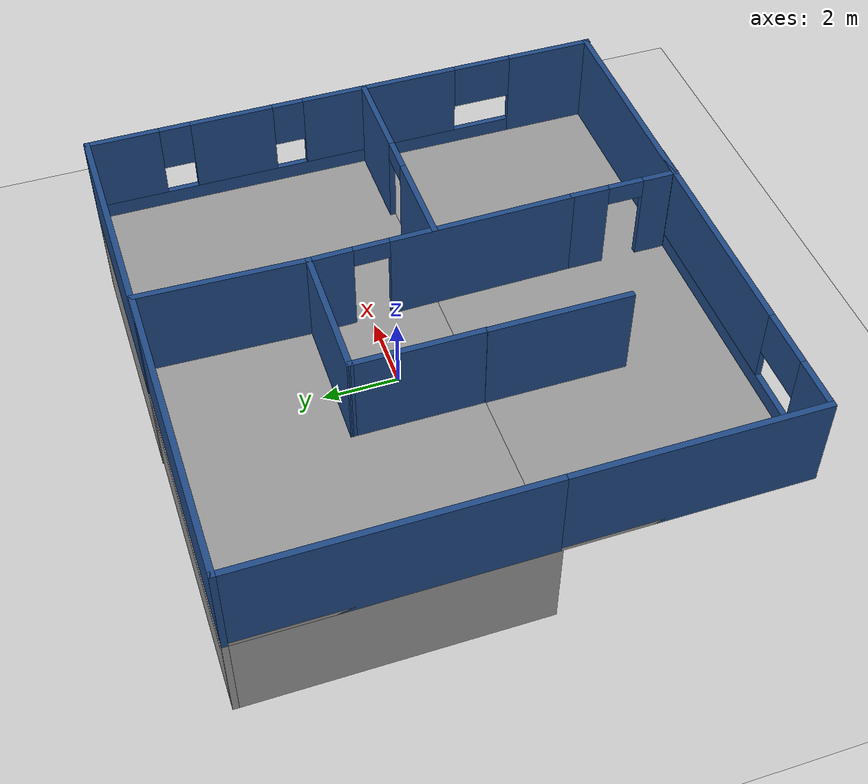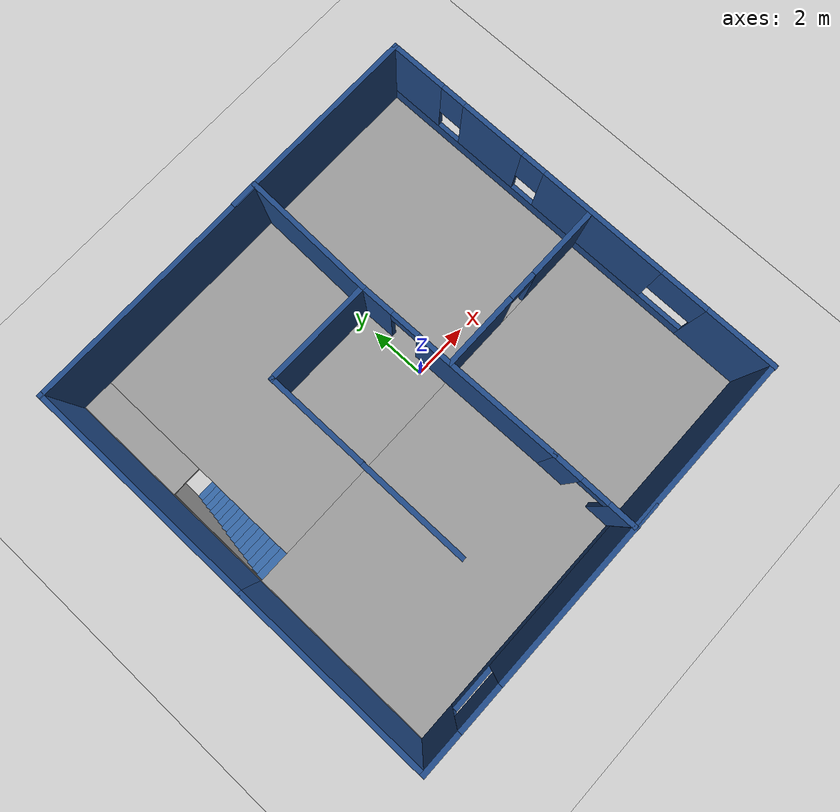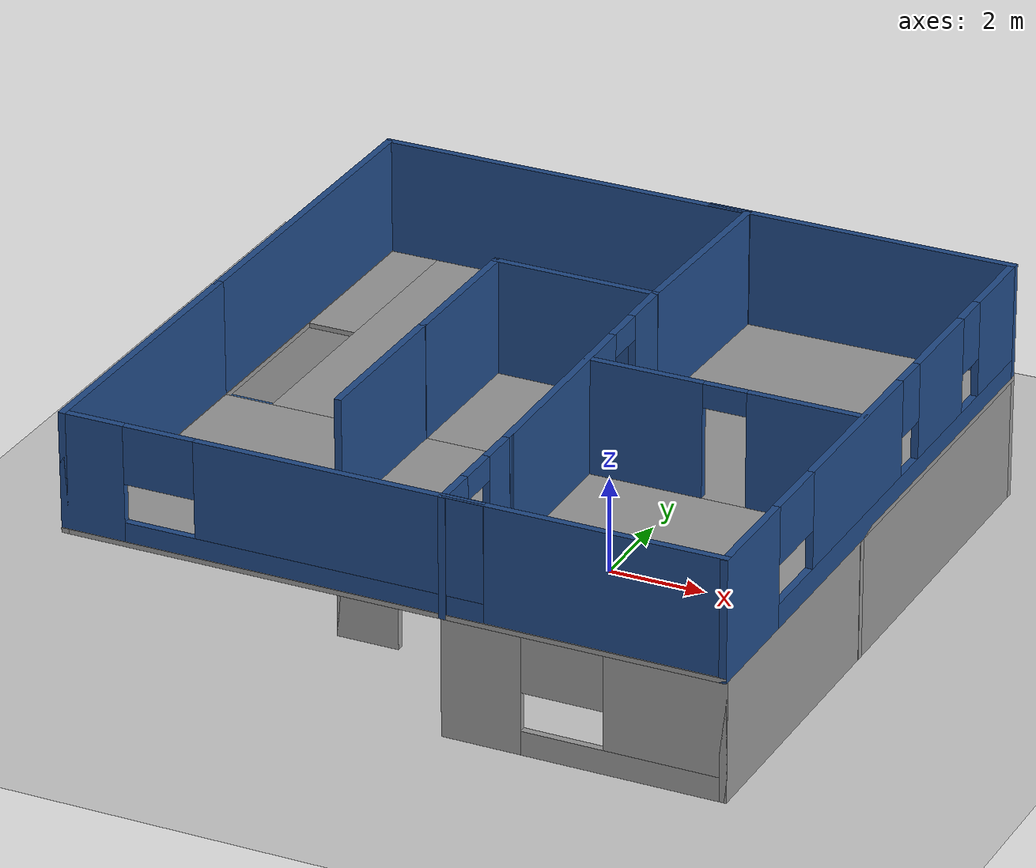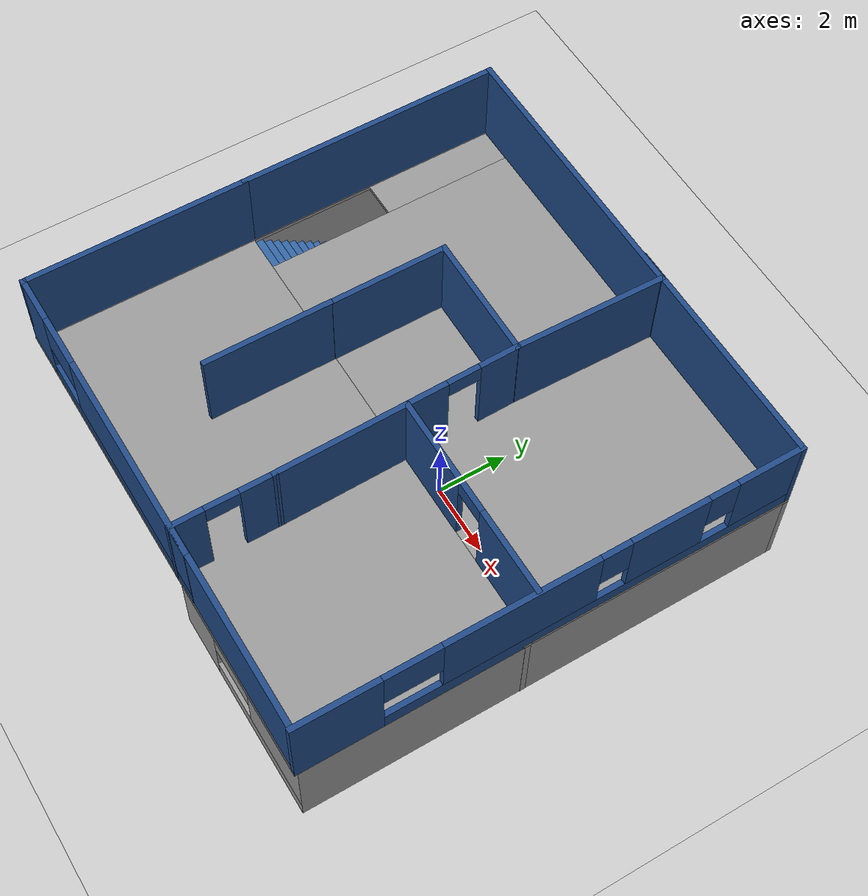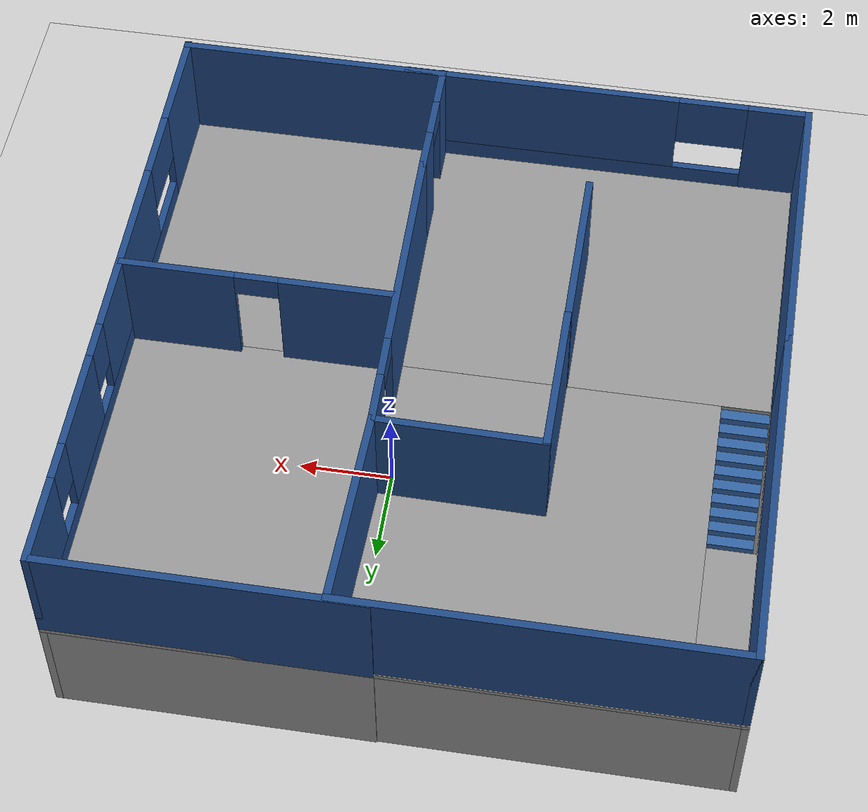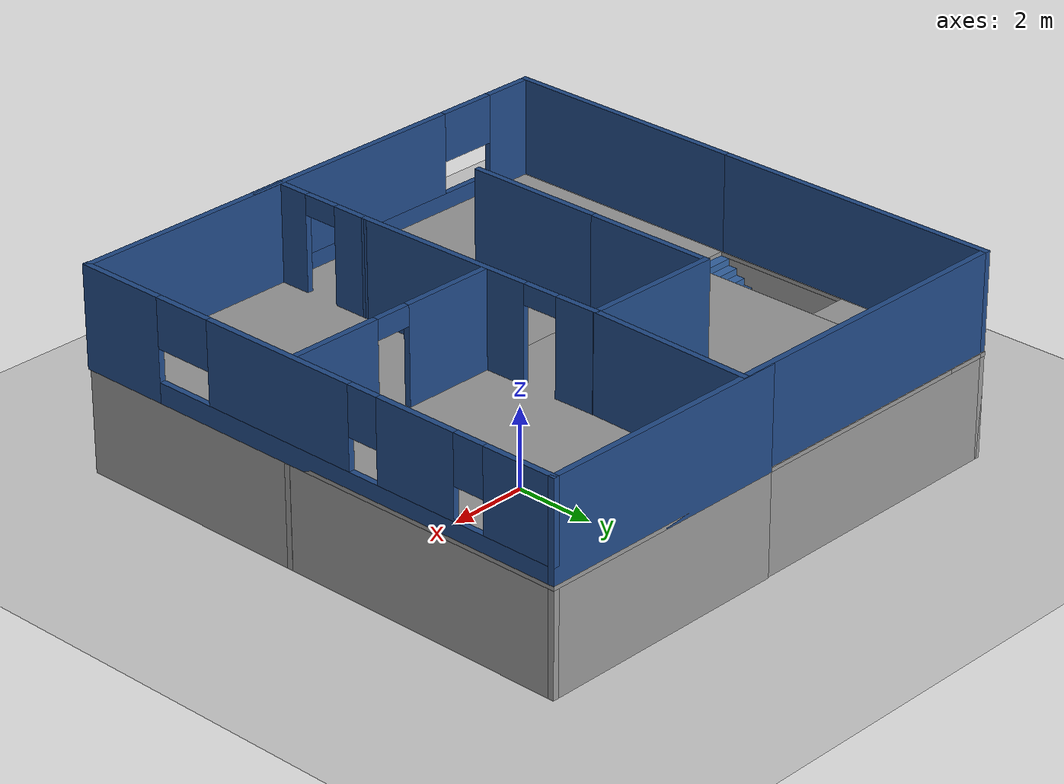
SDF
<?xml version="1.0" ?>
<sdf version="1.4">
  <world name="default">
    <include>
      <uri>model://ground_plane</uri>
    </include>
    <include>
      <uri>model://sun</uri>
    </include>
    <include>
      <uri>model://val2_house</uri>
      <name>val2_house</name>
    </include>
  </world>
</sdf>

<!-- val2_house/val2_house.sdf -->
<sdf version='1.6'>
  <model name='val2_house'>
    <pose frame=''>-1.07403 -0.487754 0 0 -0 0</pose>
    <link name='Floor_0'>
      <pose frame=''>-0.003502 -0 2.5 0 -0 0</pose>
      <visual name='Floor_0_Visual_0'>
        <pose frame=''>-6.71379 0 0.05 0 -0 0</pose>
        <geometry>
          <box>
            <size>0.16541 13.5809 0.1</size>
          </box>
        </geometry>
        <material>
          <script>
            <uri>file://media/materials/scripts/gazebo.material</uri>
            <name>Gazebo/Grey</name>
          </script>
          <ambient>0.827451 0.843137 0.811765 1</ambient>
        </material>
        <meta>
          <layer>1</layer>
        </meta>
      </visual>
      <collision name='Floor_0_Collision_0'>
        <geometry>
          <box>
            <size>0.16541 13.5809 0.1</size>
          </box>
        </geometry>
        <pose frame=''>-6.71379 0 0.05 0 -0 0</pose>
      </collision>
      <visual name='Floor_0_Visual_1'>
        <pose frame=''>0.082705 -3.67222 0.05 0 -0 0</pose>
        <geometry>
          <box>
            <size>13.4276 6.23647 0.1</size>
          </box>
        </geometry>
        <material>
          <script>
            <uri>file://media/materials/scripts/gazebo.material</uri>
            <name>Gazebo/Grey</name>
          </script>
          <ambient>0.827451 0.843137 0.811765 1</ambient>
        </material>
        <meta>
          <layer>1</layer>
        </meta>
      </visual>
      <collision name='Floor_0_Collision_1'>
        <geometry>
          <box>
            <size>13.4276 6.23647 0.1</size>
          </box>
        </geometry>
        <pose frame=''>0.082705 -3.67222 0.05 0 -0 0</pose>
      </collision>
      <visual name='Floor_0_Visual_2'>
        <pose frame=''>0.582705 3.11824 0.05 0 -0 0</pose>
        <geometry>
          <box>
            <size>12.4276 7.34444 0.1</size>
          </box>
        </geometry>
        <material>
          <script>
            <uri>file://media/materials/scripts/gazebo.material</uri>
            <name>Gazebo/Grey</name>
          </script>
          <ambient>0.827451 0.843137 0.811765 1</ambient>
        </material>
        <meta>
          <layer>1</layer>
        </meta>
      </visual>
      <collision name='Floor_0_Collision_2'>
        <geometry>
          <box>
            <size>12.4276 7.34444 0.1</size>
          </box>
        </geometry>
        <pose frame=''>0.582705 3.11824 0.05 0 -0 0</pose>
      </collision>
      <visual name='Floor_0_Visual_3'>
        <pose frame=''>-6.13109 4.86824 0.05 0 -0 0</pose>
        <geometry>
          <box>
            <size>1 3.84444 0.1</size>
          </box>
        </geometry>
        <material>
          <script>
            <uri>file://media/materials/scripts/gazebo.material</uri>
            <name>Gazebo/Grey</name>
          </script>
          <ambient>0.827451 0.843137 0.811765 1</ambient>
        </material>
        <meta>
          <layer>1</layer>
        </meta>
      </visual>
      <collision name='Floor_0_Collision_3'>
        <geometry>
          <box>
            <size>1 3.84444 0.1</size>
          </box>
        </geometry>
        <pose frame=''>-6.13109 4.86824 0.05 0 -0 0</pose>
      </collision>
    </link>
    <link name='Stairs_0'>
      <visual name='Stairs_0_Visual_0'>
        <pose frame=''>-6.13459 2.82935 0.083333 0 -0 0</pose>
        <geometry>
          <box>
            <size>1 0.233333 0.166667</size>
          </box>
        </geometry>
        <material>
          <script>
            <uri>file://media/materials/scripts/gazebo.material</uri>
            <name>Gazebo/Grey</name>
          </script>
          <ambient>0.203922 0.396078 0.643137 1</ambient>
        </material>
        <meta>
          <layer>0</layer>
        </meta>
      </visual>
      <collision name='Stairs_0_Collision_0'>
        <geometry>
          <box>
            <size>1 0.233333 0.166667</size>
          </box>
        </geometry>
        <pose frame=''>-6.13459 2.82935 0.083333 0 -0 0</pose>
      </collision>
      <visual name='Stairs_0_Visual_1'>
        <pose frame=''>-6.13459 2.59602 0.25 0 -0 0</pose>
        <geometry>
          <box>
            <size>1 0.233333 0.166667</size>
          </box>
        </geometry>
        <material>
          <script>
            <uri>file://media/materials/scripts/gazebo.material</uri>
            <name>Gazebo/Grey</name>
          </script>
          <ambient>0.203922 0.396078 0.643137 1</ambient>
        </material>
        <meta>
          <layer>0</layer>
        </meta>
      </visual>
      <collision name='Stairs_0_Collision_1'>
        <geometry>
          <box>
            <size>1 0.233333 0.166667</size>
          </box>
        </geometry>
        <pose frame=''>-6.13459 2.59602 0.25 0 -0 0</pose>
      </collision>
      <visual name='Stairs_0_Visual_2'>
        <pose frame=''>-6.13459 2.36268 0.416667 0 -0 0</pose>
        <geometry>
          <box>
            <size>1 0.233333 0.166667</size>
          </box>
        </geometry>
        <material>
          <script>
            <uri>file://media/materials/scripts/gazebo.material</uri>
            <name>Gazebo/Grey</name>
          </script>
          <ambient>0.203922 0.396078 0.643137 1</ambient>
        </material>
        <meta>
          <layer>0</layer>
        </meta>
      </visual>
      <collision name='Stairs_0_Collision_2'>
        <geometry>
          <box>
            <size>1 0.233333 0.166667</size>
          </box>
        </geometry>
        <pose frame=''>-6.13459 2.36268 0.416667 0 -0 0</pose>
      </collision>
      <visual name='Stairs_0_Visual_3'>
        <pose frame=''>-6.13459 2.12935 0.583333 0 -0 0</pose>
        <geometry>
          <box>
            <size>1 0.233333 0.166667</size>
          </box>
        </geometry>
        <material>
          <script>
            <uri>file://media/materials/scripts/gazebo.material</uri>
            <name>Gazebo/Grey</name>
          </script>
          <ambient>0.203922 0.396078 0.643137 1</ambient>
        </material>
        <meta>
          <layer>0</layer>
        </meta>
      </visual>
      <collision name='Stairs_0_Collision_3'>
        <geometry>
          <box>
            <size>1 0.233333 0.166667</size>
          </box>
        </geometry>
        <pose frame=''>-6.13459 2.12935 0.583333 0 -0 0</pose>
      </collision>
      <visual name='Stairs_0_Visual_4'>
        <pose frame=''>-6.13459 1.89602 0.75 0 -0 0</pose>
        <geometry>
          <box>
            <size>1 0.233333 0.166667</size>
          </box>
        </geometry>
        <material>
          <script>
            <uri>file://media/materials/scripts/gazebo.material</uri>
            <name>Gazebo/Grey</name>
          </script>
          <ambient>0.203922 0.396078 0.643137 1</ambient>
        </material>
        <meta>
          <layer>0</layer>
        </meta>
      </visual>
      <collision name='Stairs_0_Collision_4'>
        <geometry>
          <box>
            <size>1 0.233333 0.166667</size>
          </box>
        </geometry>
        <pose frame=''>-6.13459 1.89602 0.75 0 -0 0</pose>
      </collision>
      <visual name='Stairs_0_Visual_5'>
        <pose frame=''>-6.13459 1.66268 0.916667 0 -0 0</pose>
        <geometry>
          <box>
            <size>1 0.233333 0.166667</size>
          </box>
        </geometry>
        <material>
          <script>
            <uri>file://media/materials/scripts/gazebo.material</uri>
            <name>Gazebo/Grey</name>
          </script>
          <ambient>0.203922 0.396078 0.643137 1</ambient>
        </material>
        <meta>
          <layer>0</layer>
        </meta>
      </visual>
      <collision name='Stairs_0_Collision_5'>
        <geometry>
          <box>
            <size>1 0.233333 0.166667</size>
          </box>
        </geometry>
        <pose frame=''>-6.13459 1.66268 0.916667 0 -0 0</pose>
      </collision>
      <visual name='Stairs_0_Visual_6'>
        <pose frame=''>-6.13459 1.42935 1.08333 0 -0 0</pose>
        <geometry>
          <box>
            <size>1 0.233333 0.166667</size>
          </box>
        </geometry>
        <material>
          <script>
            <uri>file://media/materials/scripts/gazebo.material</uri>
            <name>Gazebo/Grey</name>
          </script>
          <ambient>0.203922 0.396078 0.643137 1</ambient>
        </material>
        <meta>
          <layer>0</layer>
        </meta>
      </visual>
      <collision name='Stairs_0_Collision_6'>
        <geometry>
          <box>
            <size>1 0.233333 0.166667</size>
          </box>
        </geometry>
        <pose frame=''>-6.13459 1.42935 1.08333 0 -0 0</pose>
      </collision>
      <visual name='Stairs_0_Visual_7'>
        <pose frame=''>-6.13459 1.19602 1.25 0 -0 0</pose>
        <geometry>
          <box>
            <size>1 0.233333 0.166667</size>
          </box>
        </geometry>
        <material>
          <script>
            <uri>file://media/materials/scripts/gazebo.material</uri>
            <name>Gazebo/Grey</name>
          </script>
          <ambient>0.203922 0.396078 0.643137 1</ambient>
        </material>
        <meta>
          <layer>0</layer>
        </meta>
      </visual>
      <collision name='Stairs_0_Collision_7'>
        <geometry>
          <box>
            <size>1 0.233333 0.166667</size>
          </box>
        </geometry>
        <pose frame=''>-6.13459 1.19602 1.25 0 -0 0</pose>
      </collision>
      <visual name='Stairs_0_Visual_8'>
        <pose frame=''>-6.13459 0.962685 1.41667 0 -0 0</pose>
        <geometry>
          <box>
            <size>1 0.233333 0.166667</size>
          </box>
        </geometry>
        <material>
          <script>
            <uri>file://media/materials/scripts/gazebo.material</uri>
            <name>Gazebo/Grey</name>
          </script>
          <ambient>0.203922 0.396078 0.643137 1</ambient>
        </material>
        <meta>
          <layer>0</layer>
        </meta>
      </visual>
      <collision name='Stairs_0_Collision_8'>
        <geometry>
          <box>
            <size>1 0.233333 0.166667</size>
          </box>
        </geometry>
        <pose frame=''>-6.13459 0.962685 1.41667 0 -0 0</pose>
      </collision>
      <visual name='Stairs_0_Visual_9'>
        <pose frame=''>-6.13459 0.729352 1.58333 0 -0 0</pose>
        <geometry>
          <box>
            <size>1 0.233333 0.166667</size>
          </box>
        </geometry>
        <material>
          <script>
            <uri>file://media/materials/scripts/gazebo.material</uri>
            <name>Gazebo/Grey</name>
          </script>
          <ambient>0.203922 0.396078 0.643137 1</ambient>
        </material>
        <meta>
          <layer>0</layer>
        </meta>
      </visual>
      <collision name='Stairs_0_Collision_9'>
        <geometry>
          <box>
            <size>1 0.233333 0.166667</size>
          </box>
        </geometry>
        <pose frame=''>-6.13459 0.729352 1.58333 0 -0 0</pose>
      </collision>
      <visual name='Stairs_0_Visual_10'>
        <pose frame=''>-6.13459 0.496018 1.75 0 -0 0</pose>
        <geometry>
          <box>
            <size>1 0.233333 0.166667</size>
          </box>
        </geometry>
        <material>
          <script>
            <uri>file://media/materials/scripts/gazebo.material</uri>
            <name>Gazebo/Grey</name>
          </script>
          <ambient>0.203922 0.396078 0.643137 1</ambient>
        </material>
        <meta>
          <layer>0</layer>
        </meta>
      </visual>
      <collision name='Stairs_0_Collision_10'>
        <geometry>
          <box>
            <size>1 0.233333 0.166667</size>
          </box>
        </geometry>
        <pose frame=''>-6.13459 0.496018 1.75 0 -0 0</pose>
      </collision>
      <visual name='Stairs_0_Visual_11'>
        <pose frame=''>-6.13459 0.262685 1.91667 0 -0 0</pose>
        <geometry>
          <box>
            <size>1 0.233333 0.166667</size>
          </box>
        </geometry>
        <material>
          <script>
            <uri>file://media/materials/scripts/gazebo.material</uri>
            <name>Gazebo/Grey</name>
          </script>
          <ambient>0.203922 0.396078 0.643137 1</ambient>
        </material>
        <meta>
          <layer>0</layer>
        </meta>
      </visual>
      <collision name='Stairs_0_Collision_11'>
        <geometry>
          <box>
            <size>1 0.233333 0.166667</size>
          </box>
        </geometry>
        <pose frame=''>-6.13459 0.262685 1.91667 0 -0 0</pose>
      </collision>
      <visual name='Stairs_0_Visual_12'>
        <pose frame=''>-6.13459 0.029352 2.08333 0 -0 0</pose>
        <geometry>
          <box>
            <size>1 0.233333 0.166667</size>
          </box>
        </geometry>
        <material>
          <script>
            <uri>file://media/materials/scripts/gazebo.material</uri>
            <name>Gazebo/Grey</name>
          </script>
          <ambient>0.203922 0.396078 0.643137 1</ambient>
        </material>
        <meta>
          <layer>0</layer>
        </meta>
      </visual>
      <collision name='Stairs_0_Collision_12'>
        <geometry>
          <box>
            <size>1 0.233333 0.166667</size>
          </box>
        </geometry>
        <pose frame=''>-6.13459 0.029352 2.08333 0 -0 0</pose>
      </collision>
      <visual name='Stairs_0_Visual_13'>
        <pose frame=''>-6.13459 -0.203982 2.25 0 -0 0</pose>
        <geometry>
          <box>
            <size>1 0.233333 0.166667</size>
          </box>
        </geometry>
        <material>
          <script>
            <uri>file://media/materials/scripts/gazebo.material</uri>
            <name>Gazebo/Grey</name>
          </script>
          <ambient>0.203922 0.396078 0.643137 1</ambient>
        </material>
        <meta>
          <layer>0</layer>
        </meta>
      </visual>
      <collision name='Stairs_0_Collision_13'>
        <geometry>
          <box>
            <size>1 0.233333 0.166667</size>
          </box>
        </geometry>
        <pose frame=''>-6.13459 -0.203982 2.25 0 -0 0</pose>
      </collision>
      <visual name='Stairs_0_Visual_14'>
        <pose frame=''>-6.13459 -0.437315 2.41667 0 -0 0</pose>
        <geometry>
          <box>
            <size>1 0.233333 0.166667</size>
          </box>
        </geometry>
        <material>
          <script>
            <uri>file://media/materials/scripts/gazebo.material</uri>
            <name>Gazebo/Grey</name>
          </script>
          <ambient>0.203922 0.396078 0.643137 1</ambient>
        </material>
        <meta>
          <layer>0</layer>
        </meta>
      </visual>
      <collision name='Stairs_0_Collision_14'>
        <geometry>
          <box>
            <size>1 0.233333 0.166667</size>
          </box>
        </geometry>
        <pose frame=''>-6.13459 -0.437315 2.41667 0 -0 0</pose>
      </collision>
    </link>
    <link name='Wall_0'>
      <collision name='Wall_0_Collision'>
        <geometry>
          <box>
            <size>8 0.15 2.5</size>
          </box>
        </geometry>
        <pose frame=''>0 0 1.25 0 -0 0</pose>
      </collision>
      <visual name='Wall_0_Visual'>
        <pose frame=''>0 0 1.25 0 -0 0</pose>
        <geometry>
          <box>
            <size>8 0.15 2.5</size>
          </box>
        </geometry>
        <material>
          <script>
            <uri>file://media/materials/scripts/gazebo.material</uri>
            <name>Gazebo/Grey</name>
          </script>
          <ambient>0.180392 0.203922 0.211765 1</ambient>
        </material>
        <meta>
          <layer>0</layer>
        </meta>
      </visual>
      <pose frame=''>-2.8 6.69221 0 0 -0 0</pose>
    </link>
    <link name='Wall_1'>
      <collision name='Wall_1_Collision'>
        <geometry>
          <box>
            <size>4.2514 0.15 2.5</size>
          </box>
        </geometry>
        <pose frame=''>0 0 1.25 0 -0 0</pose>
      </collision>
      <visual name='Wall_1_Visual'>
        <pose frame=''>0 0 1.25 0 -0 0</pose>
        <geometry>
          <box>
            <size>4.2514 0.15 2.5</size>
          </box>
        </geometry>
        <material>
          <script>
            <uri>file://media/materials/scripts/gazebo.material</uri>
            <name>Gazebo/Grey</name>
          </script>
          <ambient>0.180392 0.203922 0.211765 1</ambient>
        </material>
        <meta>
          <layer>0</layer>
        </meta>
      </visual>
      <pose frame=''>1.0715 4.64221 0 0 -0 -1.59689</pose>
    </link>
    <link name='Wall_10'>
      <collision name='Wall_10_Collision'>
        <geometry>
          <box>
            <size>3.5 0.15 2.5</size>
          </box>
        </geometry>
        <pose frame=''>0 0 1.25 0 -0 0</pose>
      </collision>
      <visual name='Wall_10_Visual'>
        <pose frame=''>0 0 1.25 0 -0 0</pose>
        <geometry>
          <box>
            <size>3.5 0.15 2.5</size>
          </box>
        </geometry>
        <material>
          <script>
            <uri>file://media/materials/scripts/gazebo.material</uri>
            <name>Gazebo/Grey</name>
          </script>
          <ambient>0.180392 0.203922 0.211765 1</ambient>
        </material>
        <meta>
          <layer>0</layer>
        </meta>
      </visual>
      <pose frame=''>-2.375 -2.33279 0 0 -0 -1.5708</pose>
    </link>
    <link name='Wall_11'>
      <pose frame=''>-0.628502 -4.00779 0 0 -0 0</pose>
      <visual name='Wall_11_Visual_0'>
        <pose frame=''>-1.17636 0 1.25 0 -0 0</pose>
        <geometry>
          <box>
            <size>1.29037 0.15 2.5</size>
          </box>
        </geometry>
        <material>
          <script>
            <uri>file://media/materials/scripts/gazebo.material</uri>
            <name>Gazebo/Grey</name>
          </script>
          <ambient>0.180392 0.203922 0.211765 1</ambient>
        </material>
        <meta>
          <layer>0</layer>
        </meta>
      </visual>
      <collision name='Wall_11_Collision_0'>
        <geometry>
          <box>
            <size>1.29037 0.15 2.5</size>
          </box>
        </geometry>
        <pose frame=''>-1.17636 0 1.25 0 -0 0</pose>
      </collision>
      <visual name='Wall_11_Visual_1'>
        <pose frame=''>1.09519 0 1.25 0 -0 0</pose>
        <geometry>
          <box>
            <size>1.45273 0.15 2.5</size>
          </box>
        </geometry>
        <material>
          <script>
            <uri>file://media/materials/scripts/gazebo.material</uri>
            <name>Gazebo/Grey</name>
          </script>
          <ambient>0.180392 0.203922 0.211765 1</ambient>
        </material>
        <meta>
          <layer>0</layer>
        </meta>
      </visual>
      <collision name='Wall_11_Collision_1'>
        <geometry>
          <box>
            <size>1.45273 0.15 2.5</size>
          </box>
        </geometry>
        <pose frame=''>1.09519 0 1.25 0 -0 0</pose>
      </collision>
      <visual name='Wall_11_Visual_2'>
        <pose frame=''>-0.081179 0 2.25 0 -0 0</pose>
        <geometry>
          <box>
            <size>0.9 0.15 0.5</size>
          </box>
        </geometry>
        <material>
          <script>
            <uri>file://media/materials/scripts/gazebo.material</uri>
            <name>Gazebo/Grey</name>
          </script>
          <ambient>0.180392 0.203922 0.211765 1</ambient>
        </material>
        <meta>
          <layer>0</layer>
        </meta>
      </visual>
      <collision name='Wall_11_Collision_2'>
        <geometry>
          <box>
            <size>0.9 0.15 0.5</size>
          </box>
        </geometry>
        <pose frame=''>-0.081179 0 2.25 0 -0 0</pose>
      </collision>
    </link>
    <link name='Wall_12'>
      <pose frame=''>1.068 -0.734545 0 0 -0 1.58595</pose>
      <visual name='Wall_12_Visual_0'>
        <pose frame=''>-1.18335 0 1.25 0 -0 0</pose>
        <geometry>
          <box>
            <size>4.38406 0.15 2.5</size>
          </box>
        </geometry>
        <material>
          <script>
            <uri>file://media/materials/scripts/gazebo.material</uri>
            <name>Gazebo/Grey</name>
          </script>
          <ambient>0.180392 0.203922 0.211765 1</ambient>
        </material>
        <meta>
          <layer>0</layer>
        </meta>
      </visual>
      <collision name='Wall_12_Collision_0'>
        <geometry>
          <box>
            <size>4.38406 0.15 2.5</size>
          </box>
        </geometry>
        <pose frame=''>-1.18335 0 1.25 0 -0 0</pose>
      </collision>
      <visual name='Wall_12_Visual_1'>
        <pose frame=''>2.64203 0 1.25 0 -0 0</pose>
        <geometry>
          <box>
            <size>1.4667 0.15 2.5</size>
          </box>
        </geometry>
        <material>
          <script>
            <uri>file://media/materials/scripts/gazebo.material</uri>
            <name>Gazebo/Grey</name>
          </script>
          <ambient>0.180392 0.203922 0.211765 1</ambient>
        </material>
        <meta>
          <layer>0</layer>
        </meta>
      </visual>
      <collision name='Wall_12_Collision_1'>
        <geometry>
          <box>
            <size>1.4667 0.15 2.5</size>
          </box>
        </geometry>
        <pose frame=''>2.64203 0 1.25 0 -0 0</pose>
      </collision>
      <visual name='Wall_12_Visual_2'>
        <pose frame=''>1.45868 0 2.25 0 -0 0</pose>
        <geometry>
          <box>
            <size>0.9 0.15 0.5</size>
          </box>
        </geometry>
        <material>
          <script>
            <uri>file://media/materials/scripts/gazebo.material</uri>
            <name>Gazebo/Grey</name>
          </script>
          <ambient>0.180392 0.203922 0.211765 1</ambient>
        </material>
        <meta>
          <layer>0</layer>
        </meta>
      </visual>
      <collision name='Wall_12_Collision_2'>
        <geometry>
          <box>
            <size>0.9 0.15 0.5</size>
          </box>
        </geometry>
        <pose frame=''>1.45868 0 2.25 0 -0 0</pose>
      </collision>
    </link>
    <link name='Wall_14'>
      <collision name='Wall_14_Collision'>
        <geometry>
          <box>
            <size>2.75 0.15 2.5</size>
          </box>
        </geometry>
        <pose frame=''>0 0 1.25 0 -0 0</pose>
      </collision>
      <visual name='Wall_14_Visual'>
        <pose frame=''>0 0 1.25 0 -0 0</pose>
        <geometry>
          <box>
            <size>2.75 0.15 2.5</size>
          </box>
        </geometry>
        <material>
          <script>
            <uri>file://media/materials/scripts/gazebo.material</uri>
            <name>Gazebo/Grey</name>
          </script>
          <ambient>0.180392 0.203922 0.211765 1</ambient>
        </material>
        <meta>
          <layer>0</layer>
        </meta>
      </visual>
      <pose frame=''>1.118 -5.33454 0 0 -0 -1.5708</pose>
    </link>
    <link name='Wall_15'>
      <pose frame=''>3.91799 -6.63455 0 0 -0 0</pose>
      <visual name='Wall_15_Visual_0'>
        <pose frame=''>-2.0655 0 1.25 0 -0 0</pose>
        <geometry>
          <box>
            <size>1.619 0.15 2.5</size>
          </box>
        </geometry>
        <material>
          <script>
            <uri>file://media/materials/scripts/gazebo.material</uri>
            <name>Gazebo/Grey</name>
          </script>
          <ambient>0.180392 0.203922 0.211765 1</ambient>
        </material>
        <meta>
          <layer>0</layer>
        </meta>
      </visual>
      <collision name='Wall_15_Collision_0'>
        <geometry>
          <box>
            <size>1.619 0.15 2.5</size>
          </box>
        </geometry>
        <pose frame=''>-2.0655 0 1.25 0 -0 0</pose>
      </collision>
      <visual name='Wall_15_Visual_1'>
        <pose frame=''>0.809498 0 0.25 0 -0 0</pose>
        <geometry>
          <box>
            <size>4.131 0.15 0.5</size>
          </box>
        </geometry>
        <material>
          <script>
            <uri>file://media/materials/scripts/gazebo.material</uri>
            <name>Gazebo/Grey</name>
          </script>
          <ambient>0.180392 0.203922 0.211765 1</ambient>
        </material>
        <meta>
          <layer>0</layer>
        </meta>
      </visual>
      <collision name='Wall_15_Collision_1'>
        <geometry>
          <box>
            <size>4.131 0.15 0.5</size>
          </box>
        </geometry>
        <pose frame=''>0.809498 0 0.25 0 -0 0</pose>
      </collision>
      <visual name='Wall_15_Visual_2'>
        <pose frame=''>1.63776 0 1.5 0 -0 0</pose>
        <geometry>
          <box>
            <size>2.47448 0.15 2</size>
          </box>
        </geometry>
        <material>
          <script>
            <uri>file://media/materials/scripts/gazebo.material</uri>
            <name>Gazebo/Grey</name>
          </script>
          <ambient>0.180392 0.203922 0.211765 1</ambient>
        </material>
        <meta>
          <layer>0</layer>
        </meta>
      </visual>
      <collision name='Wall_15_Collision_2'>
        <geometry>
          <box>
            <size>2.47448 0.15 2</size>
          </box>
        </geometry>
        <pose frame=''>1.63776 0 1.5 0 -0 0</pose>
      </collision>
      <visual name='Wall_15_Visual_3'>
        <pose frame=''>-0.427741 0 1.9 0 -0 0</pose>
        <geometry>
          <box>
            <size>1.65653 0.15 1.2</size>
          </box>
        </geometry>
        <material>
          <script>
            <uri>file://media/materials/scripts/gazebo.material</uri>
            <name>Gazebo/Grey</name>
          </script>
          <ambient>0.180392 0.203922 0.211765 1</ambient>
        </material>
        <meta>
          <layer>0</layer>
        </meta>
      </visual>
      <collision name='Wall_15_Collision_3'>
        <geometry>
          <box>
            <size>1.65653 0.15 1.2</size>
          </box>
        </geometry>
        <pose frame=''>-0.427741 0 1.9 0 -0 0</pose>
      </collision>
    </link>
    <link name='Wall_16'>
      <collision name='Wall_16_Collision'>
        <geometry>
          <box>
            <size>13.5 0.15 2.5</size>
          </box>
        </geometry>
        <pose frame=''>0 0 1.25 0 -0 0</pose>
      </collision>
      <visual name='Wall_16_Visual'>
        <pose frame=''>0 0 1.25 0 -0 0</pose>
        <geometry>
          <box>
            <size>13.5 0.15 2.5</size>
          </box>
        </geometry>
        <material>
          <script>
            <uri>file://media/materials/scripts/gazebo.material</uri>
            <name>Gazebo/Grey</name>
          </script>
          <ambient>0.180392 0.203922 0.211765 1</ambient>
        </material>
        <meta>
          <layer>0</layer>
        </meta>
      </visual>
      <pose frame=''>6.718 0.040455 0 0 -0 1.5708</pose>
    </link>
    <link name='Wall_17'>
      <collision name='Wall_17_Collision'>
        <geometry>
          <box>
            <size>6.5 0.15 2.5</size>
          </box>
        </geometry>
        <pose frame=''>0 0 1.25 0 -0 0</pose>
      </collision>
      <visual name='Wall_17_Visual'>
        <pose frame=''>0 0 1.25 0 -0 0</pose>
        <geometry>
          <box>
            <size>6.5 0.15 2.5</size>
          </box>
        </geometry>
        <material>
          <script>
            <uri>file://media/materials/scripts/gazebo.material</uri>
            <name>Gazebo/Grey</name>
          </script>
          <ambient>0.180392 0.203922 0.211765 1</ambient>
        </material>
        <meta>
          <layer>0</layer>
        </meta>
      </visual>
      <pose frame=''>3.54299 6.71546 0 0 -0 3.14159</pose>
    </link>
    <link name='Wall_19'>
      <pose frame=''>2.175 -0.657793 0 0 -0 0</pose>
      <visual name='Wall_19_Visual_0'>
        <pose frame=''>-4.10025 0 1.25 0 -0 0</pose>
        <geometry>
          <box>
            <size>1.04949 0.15 2.5</size>
          </box>
        </geometry>
        <material>
          <script>
            <uri>file://media/materials/scripts/gazebo.material</uri>
            <name>Gazebo/Grey</name>
          </script>
          <ambient>0.180392 0.203922 0.211765 1</ambient>
        </material>
        <meta>
          <layer>0</layer>
        </meta>
      </visual>
      <collision name='Wall_19_Collision_0'>
        <geometry>
          <box>
            <size>1.04949 0.15 2.5</size>
          </box>
        </geometry>
        <pose frame=''>-4.10025 0 1.25 0 -0 0</pose>
      </collision>
      <visual name='Wall_19_Visual_1'>
        <pose frame=''>-0.729527 0 1.25 0 -0 0</pose>
        <geometry>
          <box>
            <size>3.89196 0.15 2.5</size>
          </box>
        </geometry>
        <material>
          <script>
            <uri>file://media/materials/scripts/gazebo.material</uri>
            <name>Gazebo/Grey</name>
          </script>
          <ambient>0.180392 0.203922 0.211765 1</ambient>
        </material>
        <meta>
          <layer>0</layer>
        </meta>
      </visual>
      <collision name='Wall_19_Collision_1'>
        <geometry>
          <box>
            <size>3.89196 0.15 2.5</size>
          </box>
        </geometry>
        <pose frame=''>-0.729527 0 1.25 0 -0 0</pose>
      </collision>
      <visual name='Wall_19_Visual_2'>
        <pose frame=''>3.37073 0 1.25 0 -0 0</pose>
        <geometry>
          <box>
            <size>2.50855 0.15 2.5</size>
          </box>
        </geometry>
        <material>
          <script>
            <uri>file://media/materials/scripts/gazebo.material</uri>
            <name>Gazebo/Grey</name>
          </script>
          <ambient>0.180392 0.203922 0.211765 1</ambient>
        </material>
        <meta>
          <layer>0</layer>
        </meta>
      </visual>
      <collision name='Wall_19_Collision_2'>
        <geometry>
          <box>
            <size>2.50855 0.15 2.5</size>
          </box>
        </geometry>
        <pose frame=''>3.37073 0 1.25 0 -0 0</pose>
      </collision>
      <visual name='Wall_19_Visual_3'>
        <pose frame=''>-3.12551 0 2.25 0 -0 0</pose>
        <geometry>
          <box>
            <size>0.9 0.15 0.5</size>
          </box>
        </geometry>
        <material>
          <script>
            <uri>file://media/materials/scripts/gazebo.material</uri>
            <name>Gazebo/Grey</name>
          </script>
          <ambient>0.180392 0.203922 0.211765 1</ambient>
        </material>
        <meta>
          <layer>0</layer>
        </meta>
      </visual>
      <collision name='Wall_19_Collision_3'>
        <geometry>
          <box>
            <size>0.9 0.15 0.5</size>
          </box>
        </geometry>
        <pose frame=''>-3.12551 0 2.25 0 -0 0</pose>
      </collision>
      <visual name='Wall_19_Visual_4'>
        <pose frame=''>1.66645 0 2.25 0 -0 0</pose>
        <geometry>
          <box>
            <size>0.9 0.15 0.5</size>
          </box>
        </geometry>
        <material>
          <script>
            <uri>file://media/materials/scripts/gazebo.material</uri>
            <name>Gazebo/Grey</name>
          </script>
          <ambient>0.180392 0.203922 0.211765 1</ambient>
        </material>
        <meta>
          <layer>0</layer>
        </meta>
      </visual>
      <collision name='Wall_19_Collision_4'>
        <geometry>
          <box>
            <size>0.9 0.15 0.5</size>
          </box>
        </geometry>
        <pose frame=''>1.66645 0 2.25 0 -0 0</pose>
      </collision>
    </link>
    <link name='Wall_2'>
      <collision name='Wall_2_Collision'>
        <geometry>
          <box>
            <size>3.3931 0.15 2.5</size>
          </box>
        </geometry>
        <pose frame=''>0 0 1.25 0 -0 0</pose>
      </collision>
      <visual name='Wall_2_Visual'>
        <pose frame=''>0 0 1.25 0 -0 0</pose>
        <geometry>
          <box>
            <size>3.3931 0.15 2.5</size>
          </box>
        </geometry>
        <material>
          <script>
            <uri>file://media/materials/scripts/gazebo.material</uri>
            <name>Gazebo/Grey</name>
          </script>
          <ambient>0.180392 0.203922 0.211765 1</ambient>
        </material>
        <meta>
          <layer>0</layer>
        </meta>
      </visual>
      <pose frame=''>-0.603503 2.59221 0 0 -0 3.14159</pose>
    </link>
    <link name='Wall_21'>
      <collision name='Wall_21_Collision'>
        <geometry>
          <box>
            <size>8 0.15 2.5</size>
          </box>
        </geometry>
        <pose frame=''>0 0 1.25 0 -0 0</pose>
      </collision>
      <visual name='Wall_21_Visual'>
        <pose frame=''>0 0 1.25 0 -0 0</pose>
        <geometry>
          <box>
            <size>8 0.15 2.5</size>
          </box>
        </geometry>
        <material>
          <script>
            <uri>file://media/materials/scripts/gazebo.material</uri>
            <name>Gazebo/Grey</name>
          </script>
          <ambient>0.12549 0.290196 0.529412 1</ambient>
        </material>
        <meta>
          <layer>1</layer>
        </meta>
      </visual>
      <pose frame=''>-2.8 6.69221 2.5 0 -0 0</pose>
    </link>
    <link name='Wall_22'>
      <collision name='Wall_22_Collision'>
        <geometry>
          <box>
            <size>4.2514 0.15 2.5</size>
          </box>
        </geometry>
        <pose frame=''>0 0 1.25 0 -0 0</pose>
      </collision>
      <visual name='Wall_22_Visual'>
        <pose frame=''>0 0 1.25 0 -0 0</pose>
        <geometry>
          <box>
            <size>4.2514 0.15 2.5</size>
          </box>
        </geometry>
        <material>
          <script>
            <uri>file://media/materials/scripts/gazebo.material</uri>
            <name>Gazebo/Grey</name>
          </script>
          <ambient>0.12549 0.290196 0.529412 1</ambient>
        </material>
        <meta>
          <layer>1</layer>
        </meta>
      </visual>
      <pose frame=''>1.0715 4.64221 2.5 0 -0 -1.59689</pose>
    </link>
    <link name='Wall_23'>
      <collision name='Wall_23_Collision'>
        <geometry>
          <box>
            <size>3.53469 0.15 2.5</size>
          </box>
        </geometry>
        <pose frame=''>0 0 1.25 0 -0 0</pose>
      </collision>
      <visual name='Wall_23_Visual'>
        <pose frame=''>0 0 1.25 0 -0 0</pose>
        <geometry>
          <box>
            <size>3.53469 0.15 2.5</size>
          </box>
        </geometry>
        <material>
          <script>
            <uri>file://media/materials/scripts/gazebo.material</uri>
            <name>Gazebo/Grey</name>
          </script>
          <ambient>0.12549 0.290196 0.529412 1</ambient>
        </material>
        <meta>
          <layer>1</layer>
        </meta>
      </visual>
      <pose frame=''>-0.67426 2.6099 2.5 0 -0 3.13114</pose>
    </link>
    <link name='Wall_24'>
      <collision name='Wall_24_Collision'>
        <geometry>
          <box>
            <size>3.25 0.15 2.5</size>
          </box>
        </geometry>
        <pose frame=''>0 0 1.25 0 -0 0</pose>
      </collision>
      <visual name='Wall_24_Visual'>
        <pose frame=''>0 0 1.25 0 -0 0</pose>
        <geometry>
          <box>
            <size>3.25 0.15 2.5</size>
          </box>
        </geometry>
        <material>
          <script>
            <uri>file://media/materials/scripts/gazebo.material</uri>
            <name>Gazebo/Grey</name>
          </script>
          <ambient>0.12549 0.290196 0.529412 1</ambient>
        </material>
        <meta>
          <layer>1</layer>
        </meta>
      </visual>
      <pose frame=''>-2.36651 1.04221 2.5 0 -0 -1.5708</pose>
    </link>
    <link name='Wall_25'>
      <collision name='Wall_25_Collision'>
        <geometry>
          <box>
            <size>7.4465 0.15 2.5</size>
          </box>
        </geometry>
        <pose frame=''>0 0 1.25 0 -0 0</pose>
      </collision>
      <visual name='Wall_25_Visual'>
        <pose frame=''>0 0 1.25 0 -0 0</pose>
        <geometry>
          <box>
            <size>7.4465 0.15 2.5</size>
          </box>
        </geometry>
        <material>
          <script>
            <uri>file://media/materials/scripts/gazebo.material</uri>
            <name>Gazebo/Grey</name>
          </script>
          <ambient>0.12549 0.290196 0.529412 1</ambient>
        </material>
        <meta>
          <layer>1</layer>
        </meta>
      </visual>
      <pose frame=''>-6.725 3.04396 2.5 0 -0 -1.5708</pose>
    </link>
    <link name='Wall_27'>
      <collision name='Wall_27_Collision'>
        <geometry>
          <box>
            <size>3.5535 0.15 2.5</size>
          </box>
        </geometry>
        <pose frame=''>0 0 1.25 0 -0 0</pose>
      </collision>
      <visual name='Wall_27_Visual'>
        <pose frame=''>0 0 1.25 0 -0 0</pose>
        <geometry>
          <box>
            <size>3.5535 0.15 2.5</size>
          </box>
        </geometry>
        <material>
          <script>
            <uri>file://media/materials/scripts/gazebo.material</uri>
            <name>Gazebo/Grey</name>
          </script>
          <ambient>0.12549 0.290196 0.529412 1</ambient>
        </material>
        <meta>
          <layer>1</layer>
        </meta>
      </visual>
      <pose frame=''>-2.375 -2.30604 2.5 0 -0 -1.5708</pose>
    </link>
    <link name='Wall_29'>
      <pose frame=''>1.068 -0.734545 2.5 0 -0 1.58595</pose>
      <visual name='Wall_29_Visual_0'>
        <pose frame=''>-1.00471 0 1.25 0 -0 0</pose>
        <geometry>
          <box>
            <size>4.74133 0.15 2.5</size>
          </box>
        </geometry>
        <material>
          <script>
            <uri>file://media/materials/scripts/gazebo.material</uri>
            <name>Gazebo/Grey</name>
          </script>
          <ambient>0.12549 0.290196 0.529412 1</ambient>
        </material>
        <meta>
          <layer>1</layer>
        </meta>
      </visual>
      <collision name='Wall_29_Collision_0'>
        <geometry>
          <box>
            <size>4.74133 0.15 2.5</size>
          </box>
        </geometry>
        <pose frame=''>-1.00471 0 1.25 0 -0 0</pose>
      </collision>
      <visual name='Wall_29_Visual_1'>
        <pose frame=''>2.82066 0 1.25 0 -0 0</pose>
        <geometry>
          <box>
            <size>1.10943 0.15 2.5</size>
          </box>
        </geometry>
        <material>
          <script>
            <uri>file://media/materials/scripts/gazebo.material</uri>
            <name>Gazebo/Grey</name>
          </script>
          <ambient>0.12549 0.290196 0.529412 1</ambient>
        </material>
        <meta>
          <layer>1</layer>
        </meta>
      </visual>
      <collision name='Wall_29_Collision_1'>
        <geometry>
          <box>
            <size>1.10943 0.15 2.5</size>
          </box>
        </geometry>
        <pose frame=''>2.82066 0 1.25 0 -0 0</pose>
      </collision>
      <visual name='Wall_29_Visual_2'>
        <pose frame=''>1.81595 0 2.25 0 -0 0</pose>
        <geometry>
          <box>
            <size>0.9 0.15 0.5</size>
          </box>
        </geometry>
        <material>
          <script>
            <uri>file://media/materials/scripts/gazebo.material</uri>
            <name>Gazebo/Grey</name>
          </script>
          <ambient>0.12549 0.290196 0.529412 1</ambient>
        </material>
        <meta>
          <layer>1</layer>
        </meta>
      </visual>
      <collision name='Wall_29_Collision_2'>
        <geometry>
          <box>
            <size>0.9 0.15 0.5</size>
          </box>
        </geometry>
        <pose frame=''>1.81595 0 2.25 0 -0 0</pose>
      </collision>
    </link>
    <link name='Wall_3'>
      <pose frame=''>-2.225 1.04221 0 0 -0 -1.5708</pose>
      <visual name='Wall_3_Visual_0'>
        <pose frame=''>-0.865725 0 1.25 0 -0 0</pose>
        <geometry>
          <box>
            <size>1.51855 0.15 2.5</size>
          </box>
        </geometry>
        <material>
          <script>
            <uri>file://media/materials/scripts/gazebo.material</uri>
            <name>Gazebo/Grey</name>
          </script>
          <ambient>0.180392 0.203922 0.211765 1</ambient>
        </material>
        <meta>
          <layer>0</layer>
        </meta>
      </visual>
      <collision name='Wall_3_Collision_0'>
        <geometry>
          <box>
            <size>1.51855 0.15 2.5</size>
          </box>
        </geometry>
        <pose frame=''>-0.865725 0 1.25 0 -0 0</pose>
      </collision>
      <visual name='Wall_3_Visual_1'>
        <pose frame=''>1.20928 0 1.25 0 -0 0</pose>
        <geometry>
          <box>
            <size>0.831451 0.15 2.5</size>
          </box>
        </geometry>
        <material>
          <script>
            <uri>file://media/materials/scripts/gazebo.material</uri>
            <name>Gazebo/Grey</name>
          </script>
          <ambient>0.180392 0.203922 0.211765 1</ambient>
        </material>
        <meta>
          <layer>0</layer>
        </meta>
      </visual>
      <collision name='Wall_3_Collision_1'>
        <geometry>
          <box>
            <size>0.831451 0.15 2.5</size>
          </box>
        </geometry>
        <pose frame=''>1.20928 0 1.25 0 -0 0</pose>
      </collision>
      <visual name='Wall_3_Visual_2'>
        <pose frame=''>0.343549 0 2.25 0 -0 0</pose>
        <geometry>
          <box>
            <size>0.9 0.15 0.5</size>
          </box>
        </geometry>
        <material>
          <script>
            <uri>file://media/materials/scripts/gazebo.material</uri>
            <name>Gazebo/Grey</name>
          </script>
          <ambient>0.180392 0.203922 0.211765 1</ambient>
        </material>
        <meta>
          <layer>0</layer>
        </meta>
      </visual>
      <collision name='Wall_3_Collision_2'>
        <geometry>
          <box>
            <size>0.9 0.15 0.5</size>
          </box>
        </geometry>
        <pose frame=''>0.343549 0 2.25 0 -0 0</pose>
      </collision>
    </link>
    <link name='Wall_30'>
      <pose frame=''>1.118 -5.375 2.5 0 -0 -1.5708</pose>
      <visual name='Wall_30_Visual_0'>
        <pose frame=''>-0.921935 0 1.25 0 -0 0</pose>
        <geometry>
          <box>
            <size>0.987041 0.15 2.5</size>
          </box>
        </geometry>
        <material>
          <script>
            <uri>file://media/materials/scripts/gazebo.material</uri>
            <name>Gazebo/Grey</name>
          </script>
          <ambient>0.12549 0.290196 0.529412 1</ambient>
        </material>
        <meta>
          <layer>1</layer>
        </meta>
      </visual>
      <collision name='Wall_30_Collision_0'>
        <geometry>
          <box>
            <size>0.987041 0.15 2.5</size>
          </box>
        </geometry>
        <pose frame=''>-0.921935 0 1.25 0 -0 0</pose>
      </collision>
      <visual name='Wall_30_Visual_1'>
        <pose frame=''>0.943521 0 1.25 0 -0 0</pose>
        <geometry>
          <box>
            <size>0.94387 0.15 2.5</size>
          </box>
        </geometry>
        <material>
          <script>
            <uri>file://media/materials/scripts/gazebo.material</uri>
            <name>Gazebo/Grey</name>
          </script>
          <ambient>0.12549 0.290196 0.529412 1</ambient>
        </material>
        <meta>
          <layer>1</layer>
        </meta>
      </visual>
      <collision name='Wall_30_Collision_1'>
        <geometry>
          <box>
            <size>0.94387 0.15 2.5</size>
          </box>
        </geometry>
        <pose frame=''>0.943521 0 1.25 0 -0 0</pose>
      </collision>
      <visual name='Wall_30_Visual_2'>
        <pose frame=''>0.021585 0 2.25 0 -0 0</pose>
        <geometry>
          <box>
            <size>0.9 0.15 0.5</size>
          </box>
        </geometry>
        <material>
          <script>
            <uri>file://media/materials/scripts/gazebo.material</uri>
            <name>Gazebo/Grey</name>
          </script>
          <ambient>0.12549 0.290196 0.529412 1</ambient>
        </material>
        <meta>
          <layer>1</layer>
        </meta>
      </visual>
      <collision name='Wall_30_Collision_2'>
        <geometry>
          <box>
            <size>0.9 0.15 0.5</size>
          </box>
        </geometry>
        <pose frame=''>0.021585 0 2.25 0 -0 0</pose>
      </collision>
    </link>
    <link name='Wall_31'>
      <collision name='Wall_31_Collision'>
        <geometry>
          <box>
            <size>5.75 0.15 2.5</size>
          </box>
        </geometry>
        <pose frame=''>0 0 1.25 0 -0 0</pose>
      </collision>
      <visual name='Wall_31_Visual'>
        <pose frame=''>0 0 1.25 0 -0 0</pose>
        <geometry>
          <box>
            <size>5.75 0.15 2.5</size>
          </box>
        </geometry>
        <material>
          <script>
            <uri>file://media/materials/scripts/gazebo.material</uri>
            <name>Gazebo/Grey</name>
          </script>
          <ambient>0.12549 0.290196 0.529412 1</ambient>
        </material>
        <meta>
          <layer>1</layer>
        </meta>
      </visual>
      <pose frame=''>3.91799 -6.69523 2.5 0 -0 0</pose>
    </link>
    <link name='Wall_32'>
      <pose frame=''>6.718 -0 2.5 0 -0 1.5708</pose>
      <visual name='Wall_32_Visual_0'>
        <pose frame=''>-5.63676 0 1.25 0 -0 0</pose>
        <geometry>
          <box>
            <size>2.30739 0.15 2.5</size>
          </box>
        </geometry>
        <material>
          <script>
            <uri>file://media/materials/scripts/gazebo.material</uri>
            <name>Gazebo/Grey</name>
          </script>
          <ambient>0.12549 0.290196 0.529412 1</ambient>
        </material>
        <meta>
          <layer>1</layer>
        </meta>
      </visual>
      <collision name='Wall_32_Collision_0'>
        <geometry>
          <box>
            <size>2.30739 0.15 2.5</size>
          </box>
        </geometry>
        <pose frame=''>-5.63676 0 1.25 0 -0 0</pose>
      </collision>
      <visual name='Wall_32_Visual_1'>
        <pose frame=''>1.15369 0 0.25 0 -0 0</pose>
        <geometry>
          <box>
            <size>11.2735 0.15 0.5</size>
          </box>
        </geometry>
        <material>
          <script>
            <uri>file://media/materials/scripts/gazebo.material</uri>
            <name>Gazebo/Grey</name>
          </script>
          <ambient>0.12549 0.290196 0.529412 1</ambient>
        </material>
        <meta>
          <layer>1</layer>
        </meta>
      </visual>
      <collision name='Wall_32_Collision_1'>
        <geometry>
          <box>
            <size>11.2735 0.15 0.5</size>
          </box>
        </geometry>
        <pose frame=''>1.15369 0 0.25 0 -0 0</pose>
      </collision>
      <visual name='Wall_32_Visual_2'>
        <pose frame=''>-0.896022 0 1.5 0 -0 0</pose>
        <geometry>
          <box>
            <size>4.12952 0.15 2</size>
          </box>
        </geometry>
        <material>
          <script>
            <uri>file://media/materials/scripts/gazebo.material</uri>
            <name>Gazebo/Grey</name>
          </script>
          <ambient>0.12549 0.290196 0.529412 1</ambient>
        </material>
        <meta>
          <layer>1</layer>
        </meta>
      </visual>
      <collision name='Wall_32_Collision_2'>
        <geometry>
          <box>
            <size>4.12952 0.15 2</size>
          </box>
        </geometry>
        <pose frame=''>-0.896022 0 1.5 0 -0 0</pose>
      </collision>
      <visual name='Wall_32_Visual_3'>
        <pose frame=''>3.03695 0 1.5 0 -0 0</pose>
        <geometry>
          <box>
            <size>2.13642 0.15 2</size>
          </box>
        </geometry>
        <material>
          <script>
            <uri>file://media/materials/scripts/gazebo.material</uri>
            <name>Gazebo/Grey</name>
          </script>
          <ambient>0.12549 0.290196 0.529412 1</ambient>
        </material>
        <meta>
          <layer>1</layer>
        </meta>
      </visual>
      <collision name='Wall_32_Collision_3'>
        <geometry>
          <box>
            <size>2.13642 0.15 2</size>
          </box>
        </geometry>
        <pose frame=''>3.03695 0 1.5 0 -0 0</pose>
      </collision>
      <visual name='Wall_32_Visual_4'>
        <pose frame=''>5.84781 0 1.5 0 -0 0</pose>
        <geometry>
          <box>
            <size>1.8853 0.15 2</size>
          </box>
        </geometry>
        <material>
          <script>
            <uri>file://media/materials/scripts/gazebo.material</uri>
            <name>Gazebo/Grey</name>
          </script>
          <ambient>0.12549 0.290196 0.529412 1</ambient>
        </material>
        <meta>
          <layer>1</layer>
        </meta>
      </visual>
      <collision name='Wall_32_Collision_4'>
        <geometry>
          <box>
            <size>1.8853 0.15 2</size>
          </box>
        </geometry>
        <pose frame=''>5.84781 0 1.5 0 -0 0</pose>
      </collision>
      <visual name='Wall_32_Visual_5'>
        <pose frame=''>-3.72192 0 1.9 0 -0 0</pose>
        <geometry>
          <box>
            <size>1.52228 0.15 1.2</size>
          </box>
        </geometry>
        <material>
          <script>
            <uri>file://media/materials/scripts/gazebo.material</uri>
            <name>Gazebo/Grey</name>
          </script>
          <ambient>0.12549 0.290196 0.529412 1</ambient>
        </material>
        <meta>
          <layer>1</layer>
        </meta>
      </visual>
      <collision name='Wall_32_Collision_5'>
        <geometry>
          <box>
            <size>1.52228 0.15 1.2</size>
          </box>
        </geometry>
        <pose frame=''>-3.72192 0 1.9 0 -0 0</pose>
      </collision>
      <visual name='Wall_32_Visual_6'>
        <pose frame=''>1.56874 0 1.9 0 -0 0</pose>
        <geometry>
          <box>
            <size>0.8 0.15 1.2</size>
          </box>
        </geometry>
        <material>
          <script>
            <uri>file://media/materials/scripts/gazebo.material</uri>
            <name>Gazebo/Grey</name>
          </script>
          <ambient>0.12549 0.290196 0.529412 1</ambient>
        </material>
        <meta>
          <layer>1</layer>
        </meta>
      </visual>
      <collision name='Wall_32_Collision_6'>
        <geometry>
          <box>
            <size>0.8 0.15 1.2</size>
          </box>
        </geometry>
        <pose frame=''>1.56874 0 1.9 0 -0 0</pose>
      </collision>
      <visual name='Wall_32_Visual_7'>
        <pose frame=''>4.50516 0 1.9 0 -0 0</pose>
        <geometry>
          <box>
            <size>0.8 0.15 1.2</size>
          </box>
        </geometry>
        <material>
          <script>
            <uri>file://media/materials/scripts/gazebo.material</uri>
            <name>Gazebo/Grey</name>
          </script>
          <ambient>0.12549 0.290196 0.529412 1</ambient>
        </material>
        <meta>
          <layer>1</layer>
        </meta>
      </visual>
      <collision name='Wall_32_Collision_7'>
        <geometry>
          <box>
            <size>0.8 0.15 1.2</size>
          </box>
        </geometry>
        <pose frame=''>4.50516 0 1.9 0 -0 0</pose>
      </collision>
    </link>
    <link name='Wall_33'>
      <collision name='Wall_33_Collision'>
        <geometry>
          <box>
            <size>6.5 0.15 2.5</size>
          </box>
        </geometry>
        <pose frame=''>0 0 1.25 0 -0 0</pose>
      </collision>
      <visual name='Wall_33_Visual'>
        <pose frame=''>0 0 1.25 0 -0 0</pose>
        <geometry>
          <box>
            <size>6.5 0.15 2.5</size>
          </box>
        </geometry>
        <material>
          <script>
            <uri>file://media/materials/scripts/gazebo.material</uri>
            <name>Gazebo/Grey</name>
          </script>
          <ambient>0.12549 0.290196 0.529412 1</ambient>
        </material>
        <meta>
          <layer>1</layer>
        </meta>
      </visual>
      <pose frame=''>3.54299 6.71546 2.5 0 -0 3.14159</pose>
    </link>
    <link name='Wall_35'>
      <collision name='Wall_35_Collision'>
        <geometry>
          <box>
            <size>6.25 0.15 2.5</size>
          </box>
        </geometry>
        <pose frame=''>0 0 1.25 0 -0 0</pose>
      </collision>
      <visual name='Wall_35_Visual'>
        <pose frame=''>0 0 1.25 0 -0 0</pose>
        <geometry>
          <box>
            <size>6.25 0.15 2.5</size>
          </box>
        </geometry>
        <material>
          <script>
            <uri>file://media/materials/scripts/gazebo.material</uri>
            <name>Gazebo/Grey</name>
          </script>
          <ambient>0.12549 0.290196 0.529412 1</ambient>
        </material>
        <meta>
          <layer>1</layer>
        </meta>
      </visual>
      <pose frame=''>-6.725 -3.65429 2.5 0 -0 -1.5708</pose>
    </link>
    <link name='Wall_36'>
      <pose frame=''>-2.425 -6.70429 2.5 0 -0 0</pose>
      <visual name='Wall_36_Visual_0'>
        <pose frame=''>-3.69902 0 1.25 0 -0 0</pose>
        <geometry>
          <box>
            <size>1.35195 0.15 2.5</size>
          </box>
        </geometry>
        <material>
          <script>
            <uri>file://media/materials/scripts/gazebo.material</uri>
            <name>Gazebo/Grey</name>
          </script>
          <ambient>0.12549 0.290196 0.529412 1</ambient>
        </material>
        <meta>
          <layer>1</layer>
        </meta>
      </visual>
      <collision name='Wall_36_Collision_0'>
        <geometry>
          <box>
            <size>1.35195 0.15 2.5</size>
          </box>
        </geometry>
        <pose frame=''>-3.69902 0 1.25 0 -0 0</pose>
      </collision>
      <visual name='Wall_36_Visual_1'>
        <pose frame=''>0.675977 0 0.25 0 -0 0</pose>
        <geometry>
          <box>
            <size>7.39805 0.15 0.5</size>
          </box>
        </geometry>
        <material>
          <script>
            <uri>file://media/materials/scripts/gazebo.material</uri>
            <name>Gazebo/Grey</name>
          </script>
          <ambient>0.12549 0.290196 0.529412 1</ambient>
        </material>
        <meta>
          <layer>1</layer>
        </meta>
      </visual>
      <collision name='Wall_36_Collision_1'>
        <geometry>
          <box>
            <size>7.39805 0.15 0.5</size>
          </box>
        </geometry>
        <pose frame=''>0.675977 0 0.25 0 -0 0</pose>
      </collision>
      <visual name='Wall_36_Visual_2'>
        <pose frame=''>1.40973 0 1.5 0 -0 0</pose>
        <geometry>
          <box>
            <size>5.93053 0.15 2</size>
          </box>
        </geometry>
        <material>
          <script>
            <uri>file://media/materials/scripts/gazebo.material</uri>
            <name>Gazebo/Grey</name>
          </script>
          <ambient>0.12549 0.290196 0.529412 1</ambient>
        </material>
        <meta>
          <layer>1</layer>
        </meta>
      </visual>
      <collision name='Wall_36_Collision_2'>
        <geometry>
          <box>
            <size>5.93053 0.15 2</size>
          </box>
        </geometry>
        <pose frame=''>1.40973 0 1.5 0 -0 0</pose>
      </collision>
      <visual name='Wall_36_Visual_3'>
        <pose frame=''>-2.28929 0 1.9 0 -0 0</pose>
        <geometry>
          <box>
            <size>1.46752 0.15 1.2</size>
          </box>
        </geometry>
        <material>
          <script>
            <uri>file://media/materials/scripts/gazebo.material</uri>
            <name>Gazebo/Grey</name>
          </script>
          <ambient>0.12549 0.290196 0.529412 1</ambient>
        </material>
        <meta>
          <layer>1</layer>
        </meta>
      </visual>
      <collision name='Wall_36_Collision_3'>
        <geometry>
          <box>
            <size>1.46752 0.15 1.2</size>
          </box>
        </geometry>
        <pose frame=''>-2.28929 0 1.9 0 -0 0</pose>
      </collision>
    </link>
    <link name='Wall_38'>
      <pose frame=''>3.8682 -0.483922 2.5 0 -0 0</pose>
      <visual name='Wall_38_Visual_0'>
        <pose frame=''>-1.6412 0 1.25 0 -0 0</pose>
        <geometry>
          <box>
            <size>2.4676 0.15 2.5</size>
          </box>
        </geometry>
        <material>
          <script>
            <uri>file://media/materials/scripts/gazebo.material</uri>
            <name>Gazebo/Grey</name>
          </script>
          <ambient>0.12549 0.290196 0.529412 1</ambient>
        </material>
        <meta>
          <layer>1</layer>
        </meta>
      </visual>
      <collision name='Wall_38_Collision_0'>
        <geometry>
          <box>
            <size>2.4676 0.15 2.5</size>
          </box>
        </geometry>
        <pose frame=''>-1.6412 0 1.25 0 -0 0</pose>
      </collision>
      <visual name='Wall_38_Visual_1'>
        <pose frame=''>1.6838 0 1.25 0 -0 0</pose>
        <geometry>
          <box>
            <size>2.3824 0.15 2.5</size>
          </box>
        </geometry>
        <material>
          <script>
            <uri>file://media/materials/scripts/gazebo.material</uri>
            <name>Gazebo/Grey</name>
          </script>
          <ambient>0.12549 0.290196 0.529412 1</ambient>
        </material>
        <meta>
          <layer>1</layer>
        </meta>
      </visual>
      <collision name='Wall_38_Collision_1'>
        <geometry>
          <box>
            <size>2.3824 0.15 2.5</size>
          </box>
        </geometry>
        <pose frame=''>1.6838 0 1.25 0 -0 0</pose>
      </collision>
      <visual name='Wall_38_Visual_2'>
        <pose frame=''>0.042602 0 2.25 0 -0 0</pose>
        <geometry>
          <box>
            <size>0.9 0.15 0.5</size>
          </box>
        </geometry>
        <material>
          <script>
            <uri>file://media/materials/scripts/gazebo.material</uri>
            <name>Gazebo/Grey</name>
          </script>
          <ambient>0.12549 0.290196 0.529412 1</ambient>
        </material>
        <meta>
          <layer>1</layer>
        </meta>
      </visual>
      <collision name='Wall_38_Collision_2'>
        <geometry>
          <box>
            <size>0.9 0.15 0.5</size>
          </box>
        </geometry>
        <pose frame=''>0.042602 0 2.25 0 -0 0</pose>
      </collision>
    </link>
    <link name='Wall_5'>
      <collision name='Wall_5_Collision'>
        <geometry>
          <box>
            <size>7.5 0.15 2.5</size>
          </box>
        </geometry>
        <pose frame=''>0 0 1.25 0 -0 0</pose>
      </collision>
      <visual name='Wall_5_Visual'>
        <pose frame=''>0 0 1.25 0 -0 0</pose>
        <geometry>
          <box>
            <size>7.5 0.15 2.5</size>
          </box>
        </geometry>
        <material>
          <script>
            <uri>file://media/materials/scripts/gazebo.material</uri>
            <name>Gazebo/Grey</name>
          </script>
          <ambient>0.180392 0.203922 0.211765 1</ambient>
        </material>
        <meta>
          <layer>0</layer>
        </meta>
      </visual>
      <pose frame=''>-6.725 3.01721 0 0 -0 -1.5708</pose>
    </link>
    <link name='Wall_6'>
      <pose frame=''>-4.55 -0.657793 0 0 -0 0</pose>
      <visual name='Wall_6_Visual_0'>
        <pose frame=''>-1.49199 0 1.25 0 -0 0</pose>
        <geometry>
          <box>
            <size>1.51602 0.15 2.5</size>
          </box>
        </geometry>
        <material>
          <script>
            <uri>file://media/materials/scripts/gazebo.material</uri>
            <name>Gazebo/Grey</name>
          </script>
          <ambient>0.180392 0.203922 0.211765 1</ambient>
        </material>
        <meta>
          <layer>0</layer>
        </meta>
      </visual>
      <collision name='Wall_6_Collision_0'>
        <geometry>
          <box>
            <size>1.51602 0.15 2.5</size>
          </box>
        </geometry>
        <pose frame=''>-1.49199 0 1.25 0 -0 0</pose>
      </collision>
      <visual name='Wall_6_Visual_1'>
        <pose frame=''>0.758012 0 0.25 0 -0 0</pose>
        <geometry>
          <box>
            <size>2.98398 0.15 0.5</size>
          </box>
        </geometry>
        <material>
          <script>
            <uri>file://media/materials/scripts/gazebo.material</uri>
            <name>Gazebo/Grey</name>
          </script>
          <ambient>0.180392 0.203922 0.211765 1</ambient>
        </material>
        <meta>
          <layer>0</layer>
        </meta>
      </visual>
      <collision name='Wall_6_Collision_1'>
        <geometry>
          <box>
            <size>2.98398 0.15 0.5</size>
          </box>
        </geometry>
        <pose frame=''>0.758012 0 0.25 0 -0 0</pose>
      </collision>
      <visual name='Wall_6_Visual_2'>
        <pose frame=''>1.46474 0 1.5 0 -0 0</pose>
        <geometry>
          <box>
            <size>1.57051 0.15 2</size>
          </box>
        </geometry>
        <material>
          <script>
            <uri>file://media/materials/scripts/gazebo.material</uri>
            <name>Gazebo/Grey</name>
          </script>
          <ambient>0.180392 0.203922 0.211765 1</ambient>
        </material>
        <meta>
          <layer>0</layer>
        </meta>
      </visual>
      <collision name='Wall_6_Collision_2'>
        <geometry>
          <box>
            <size>1.57051 0.15 2</size>
          </box>
        </geometry>
        <pose frame=''>1.46474 0 1.5 0 -0 0</pose>
      </collision>
      <visual name='Wall_6_Visual_3'>
        <pose frame=''>-0.027244 0 1.9 0 -0 0</pose>
        <geometry>
          <box>
            <size>1.41346 0.15 1.2</size>
          </box>
        </geometry>
        <material>
          <script>
            <uri>file://media/materials/scripts/gazebo.material</uri>
            <name>Gazebo/Grey</name>
          </script>
          <ambient>0.180392 0.203922 0.211765 1</ambient>
        </material>
        <meta>
          <layer>0</layer>
        </meta>
      </visual>
      <collision name='Wall_6_Collision_3'>
        <geometry>
          <box>
            <size>1.41346 0.15 1.2</size>
          </box>
        </geometry>
        <pose frame=''>-0.027244 0 1.9 0 -0 0</pose>
      </collision>
    </link>
    <static>1</static>
  </model>
</sdf>
